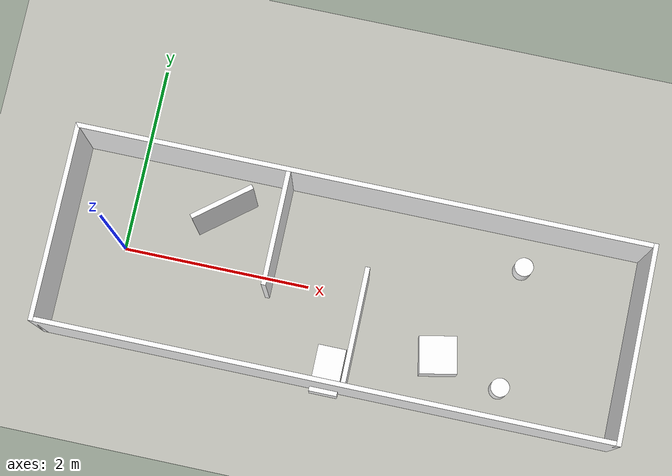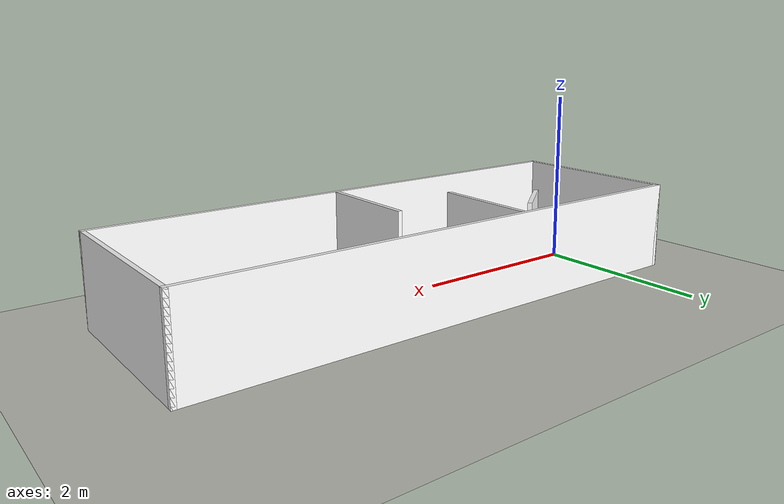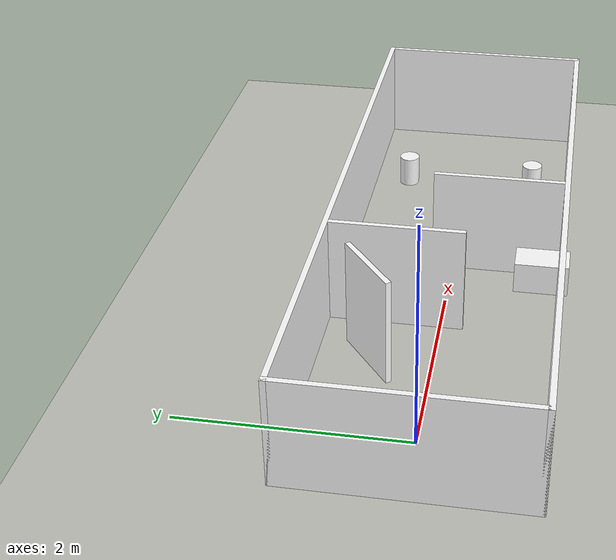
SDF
<?xml version="1.0"?>
<sdf version="1.9">
  <world name="arena">
    <physics name="1ms" type="ignored">
      <max_step_size>0.001</max_step_size>
      <real_time_factor>1.0</real_time_factor>
    </physics>
    <plugin filename="gz-sim-physics-system" name="gz::sim::systems::Physics"/>
    <plugin filename="gz-sim-user-commands-system" name="gz::sim::systems::UserCommands"/>
    <plugin filename="gz-sim-scene-broadcaster-system" name="gz::sim::systems::SceneBroadcaster"/>
    <plugin filename="gz-sim-sensors-system" name="gz::sim::systems::Sensors">
      <render_engine>ogre2</render_engine>
    </plugin>
    <plugin filename="gz-sim-imu-system" name="gz::sim::systems::Imu"/>

    <scene>
      <ambient>0.6 0.6 0.6 1</ambient>
      <background>0.8 0.8 0.8 1</background>
      <grid>false</grid>
    </scene>

    <light type="directional" name="sun">
      <cast_shadows>true</cast_shadows>
      <pose>0 0 10 0 0 0</pose>
      <diffuse>0.9 0.9 0.9 1</diffuse>
      <specular>0.2 0.2 0.2 1</specular>
      <direction>-0.5 0.1 -0.9</direction>
    </light>

    <model name="ground_plane">
      <static>true</static>
      <link name="link">
        <collision name="collision">
          <geometry><plane><normal>0 0 1</normal><size>20 20</size></plane></geometry>
        </collision>
        <visual name="visual">
          <geometry><plane><normal>0 0 1</normal><size>20 20</size></plane></geometry>
          <material><ambient>0.75 0.75 0.72 1</ambient><diffuse>0.75 0.75 0.72 1</diffuse></material>
        </visual>
      </link>
    </model>

    <model name="walls">
      <static>true</static>
      <link name="link">
        <collision name="north_c"><pose>2.4 1.025 0.5 0 0 0</pose><geometry><box><size>6.1 0.05 1.0</size></box></geometry></collision>
        <visual name="north_v"><pose>2.4 1.025 0.5 0 0 0</pose><geometry><box><size>6.1 0.05 1.0</size></box></geometry><material><ambient>1 1 1 1</ambient><diffuse>1 1 1 1</diffuse><pbr><metal><albedo_map>textures/wall_north.png</albedo_map><roughness>0.9</roughness><metalness>0</metalness></metal></pbr></material></visual>
        <collision name="south_c"><pose>2.4 -1.025 0.5 0 0 0</pose><geometry><box><size>6.1 0.05 1.0</size></box></geometry></collision>
        <visual name="south_v"><pose>2.4 -1.025 0.5 0 0 0</pose><geometry><box><size>6.1 0.05 1.0</size></box></geometry><material><ambient>1 1 1 1</ambient><diffuse>1 1 1 1</diffuse><pbr><metal><albedo_map>textures/wall_south.png</albedo_map><roughness>0.9</roughness><metalness>0</metalness></metal></pbr></material></visual>
        <collision name="west_c"><pose>-0.625 0 0.5 0 0 0</pose><geometry><box><size>0.05 2.1 1.0</size></box></geometry></collision>
        <visual name="west_v"><pose>-0.625 0 0.5 0 0 0</pose><geometry><box><size>0.05 2.1 1.0</size></box></geometry><material><ambient>1 1 1 1</ambient><diffuse>1 1 1 1</diffuse><pbr><metal><albedo_map>textures/wall_west.png</albedo_map><roughness>0.9</roughness><metalness>0</metalness></metal></pbr></material></visual>
        <collision name="east_c"><pose>5.425 0 0.5 0 0 0</pose><geometry><box><size>0.05 2.1 1.0</size></box></geometry></collision>
        <visual name="east_v"><pose>5.425 0 0.5 0 0 0</pose><geometry><box><size>0.05 2.1 1.0</size></box></geometry><material><ambient>1 1 1 1</ambient><diffuse>1 1 1 1</diffuse><pbr><metal><albedo_map>textures/wall_east.png</albedo_map><roughness>0.9</roughness><metalness>0</metalness></metal></pbr></material></visual>
        <collision name="partition_a_c"><pose>1.6 0.4 0.5 0 0 0</pose><geometry><box><size>0.05 1.2 1.0</size></box></geometry></collision>
        <visual name="partition_a_v"><pose>1.6 0.4 0.5 0 0 0</pose><geometry><box><size>0.05 1.2 1.0</size></box></geometry><material><ambient>1 1 1 1</ambient><diffuse>1 1 1 1</diffuse><pbr><metal><albedo_map>textures/partition.png</albedo_map><roughness>0.9</roughness><metalness>0</metalness></metal></pbr></material></visual>
        <collision name="partition_b_c"><pose>2.6 -0.4 0.5 0 0 0</pose><geometry><box><size>0.05 1.2 1.0</size></box></geometry></collision>
        <visual name="partition_b_v"><pose>2.6 -0.4 0.5 0 0 0</pose><geometry><box><size>0.05 1.2 1.0</size></box></geometry><material><ambient>1 1 1 1</ambient><diffuse>1 1 1 1</diffuse><pbr><metal><albedo_map>textures/wall_west.png</albedo_map><roughness>0.9</roughness><metalness>0</metalness></metal></pbr></material></visual>
      </link>
    </model>

    <model name="slant_panel">
      <static>true</static>
      <pose>1.0 0.55 0.5 0 0 -0.9</pose>
      <link name="link">
        <collision name="c"><geometry><box><size>0.05 0.7 1.0</size></box></geometry></collision>
        <visual name="v"><geometry><box><size>0.05 0.7 1.0</size></box></geometry><material><ambient>1 1 1 1</ambient><diffuse>1 1 1 1</diffuse><pbr><metal><albedo_map>textures/partition.png</albedo_map><roughness>0.9</roughness><metalness>0</metalness></metal></pbr></material></visual>
      </link>
    </model>

    <model name="box_obstacle">
      <static>true</static>
      <pose>3.5 -0.45 0.15 0 0 0.2</pose>
      <link name="link">
        <collision name="c"><geometry><box><size>0.4 0.4 0.3</size></box></geometry></collision>
        <visual name="v"><geometry><box><size>0.4 0.4 0.3</size></box></geometry><material><ambient>1 1 1 1</ambient><diffuse>1 1 1 1</diffuse><pbr><metal><albedo_map>textures/box.png</albedo_map><roughness>0.9</roughness><metalness>0</metalness></metal></pbr></material></visual>
      </link>
    </model>

    <model name="crate_obstacle">
      <static>true</static>
      <pose>2.4 -0.85 0.15 0 0 0</pose>
      <link name="link">
        <collision name="c"><geometry><box><size>0.3 0.5 0.3</size></box></geometry></collision>
        <visual name="v"><geometry><box><size>0.3 0.5 0.3</size></box></geometry><material><ambient>1 1 1 1</ambient><diffuse>1 1 1 1</diffuse><pbr><metal><albedo_map>textures/crate.png</albedo_map><roughness>0.9</roughness><metalness>0</metalness></metal></pbr></material></visual>
      </link>
    </model>

    <model name="pillar_north">
      <static>true</static>
      <pose>4.2 0.65 0.15 0 0 0</pose>
      <link name="link">
        <collision name="c"><geometry><cylinder><radius>0.1</radius><length>0.3</length></cylinder></geometry></collision>
        <visual name="v"><geometry><cylinder><radius>0.1</radius><length>0.3</length></cylinder></geometry><material><ambient>1 1 1 1</ambient><diffuse>1 1 1 1</diffuse><pbr><metal><albedo_map>textures/cylinder.png</albedo_map><roughness>0.9</roughness><metalness>0</metalness></metal></pbr></material></visual>
      </link>
    </model>

    <model name="pillar_south">
      <static>true</static>
      <pose>4.2 -0.65 0.15 0 0 0</pose>
      <link name="link">
        <collision name="c"><geometry><cylinder><radius>0.1</radius><length>0.3</length></cylinder></geometry></collision>
        <visual name="v"><geometry><cylinder><radius>0.1</radius><length>0.3</length></cylinder></geometry><material><ambient>1 1 1 1</ambient><diffuse>1 1 1 1</diffuse><pbr><metal><albedo_map>textures/crate.png</albedo_map><roughness>0.9</roughness><metalness>0</metalness></metal></pbr></material></visual>
      </link>
    </model>
  </world>
</sdf>
